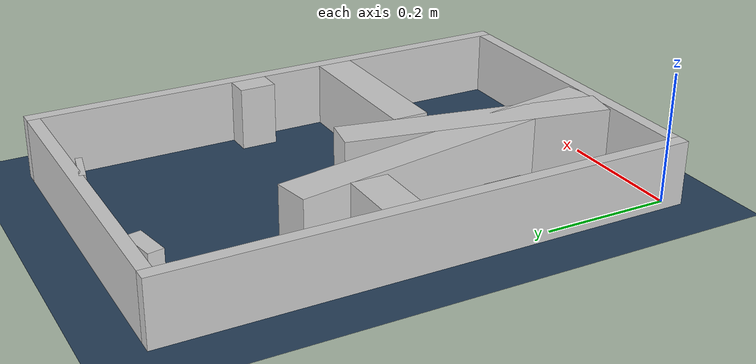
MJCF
<?xml version="1.0" ?>
<mujoco model="generated_real_template">
  <compiler angle="degree"/>
  <option timestep="0.002" integrator="implicitfast" iterations="100" cone="elliptic"/>
  <default>
    <geom density="1"/>
  </default>
  <asset>
    <texture builtin="gradient" height="3072" rgb1="0.3 0.5 0.7" rgb2="0 0 0" type="skybox" width="512"/>
    <texture builtin="checker" height="300" mark="edge" markrgb="0.8 0.8 0.8" name="groundplane" rgb1="0.2 0.3 0.4" rgb2="0.1 0.2 0.3" type="2d" width="300"/>
    <material name="groundplane" reflectance="0.2" texrepeat="5 5" texture="groundplane" texuniform="true"/>
  </asset>
  <worldbody>
    <light dir="0 0 -1" directional="true" pos="0 0 1.5"/>
    <geom name="floor" type="plane" condim="4" friction="0.5 0.005 0.001" material="groundplane" size="0 0 0.05"/>
    <body name="walls">
      <geom name="wall_boundary_left" type="box" condim="4" friction="1.0 0.005 0.0001" rgba="0.8 0.8 0.8 1" pos="-0.010000 0.387500 0.050000" euler="0 0 0.000000" size="0.010000 0.407500 0.050000"/>
      <geom name="wall_boundary_right" type="box" condim="4" friction="1.0 0.005 0.0001" rgba="0.8 0.8 0.8 1" pos="0.500000 0.387500 0.050000" euler="0 0 0.000000" size="0.010000 0.407500 0.050000"/>
      <geom name="wall_boundary_bottom" type="box" condim="4" friction="1.0 0.005 0.0001" rgba="0.8 0.8 0.8 1" pos="0.245000 -0.010000 0.050000" euler="0 0 0.000000" size="0.245000 0.010000 0.050000"/>
      <geom name="wall_boundary_top" type="box" condim="4" friction="1.0 0.005 0.0001" rgba="0.8 0.8 0.8 1" pos="0.245000 0.785000 0.050000" euler="0 0 0.000000" size="0.245000 0.010000 0.050000"/>
      <geom name="wall_inner_1_1" type="box" condim="4" friction="1.0 0.005 0.0001" rgba="0.8 0.8 0.8 1" pos="0.149776 0.274779 0.050000" euler="0 0 100.298048" size="0.279278 0.028500 0.050000"/>
      <geom name="wall_inner_1_2" type="box" condim="4" friction="1.0 0.005 0.0001" rgba="0.8 0.8 0.8 1" pos="0.060966 0.763566 0.050000" euler="0 0 100.298048" size="0.011621 0.028500 0.050000"/>
      <geom name="wall_inner_2_1" type="box" condim="4" friction="1.0 0.005 0.0001" rgba="0.8 0.8 0.8 1" pos="0.043367 0.439514 0.050000" euler="0 0 0.000000" size="0.043367 0.028500 0.050000"/>
      <geom name="wall_inner_2_2" type="box" condim="4" friction="1.0 0.005 0.0001" rgba="0.8 0.8 0.8 1" pos="0.470965 0.439514 0.050000" euler="0 0 0.000000" size="0.019035 0.028500 0.050000"/>
      <geom name="wall_inner_3_1" type="box" condim="4" friction="1.0 0.005 0.0001" rgba="0.8 0.8 0.8 1" pos="0.000592 0.284297 0.050000" euler="0 0 0.000000" size="0.000592 0.028500 0.050000"/>
      <geom name="wall_inner_3_2" type="box" condim="4" friction="1.0 0.005 0.0001" rgba="0.8 0.8 0.8 1" pos="0.366292 0.284297 0.050000" euler="0 0 0.000000" size="0.123708 0.028500 0.050000"/>
      <geom name="wall_inner_4_1" type="box" condim="4" friction="1.0 0.005 0.0001" rgba="0.8 0.8 0.8 1" pos="0.302010 0.770260 0.050000" euler="0 0 -100.985482" size="0.004828 0.028500 0.050000"/>
      <geom name="wall_inner_4_2" type="box" condim="4" friction="1.0 0.005 0.0001" rgba="0.8 0.8 0.8 1" pos="0.192228 0.204718 0.050000" euler="0 0 -100.985482" size="0.208539 0.028500 0.050000"/>
    </body>
  </worldbody>
</mujoco>
